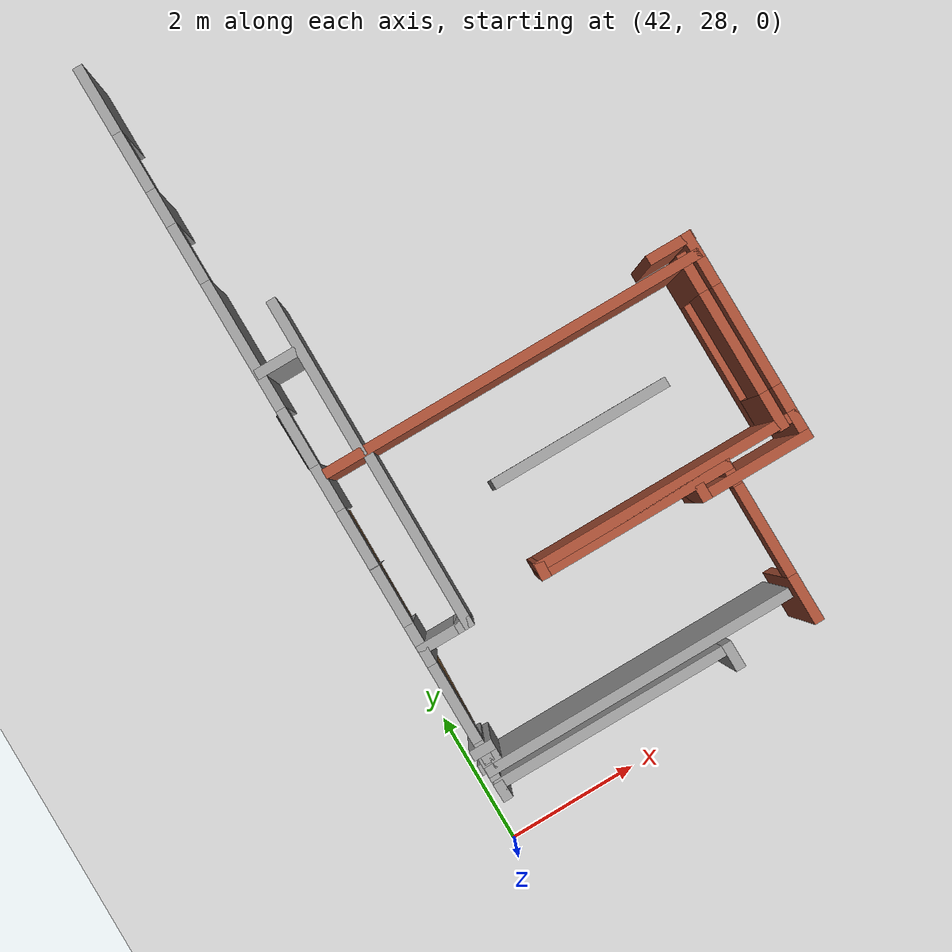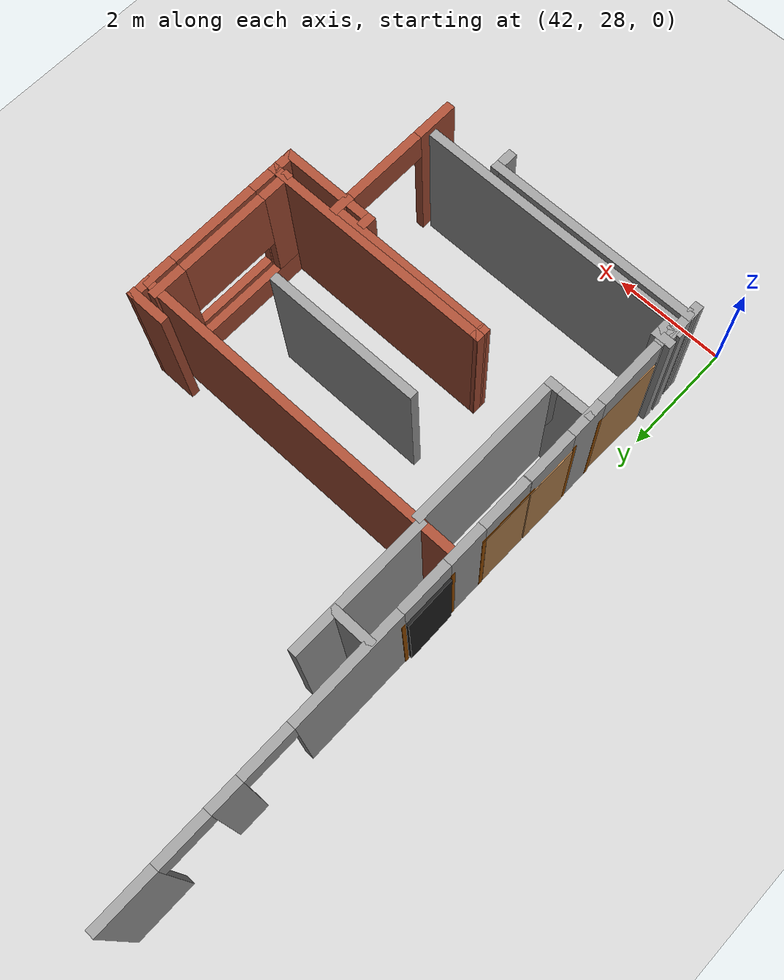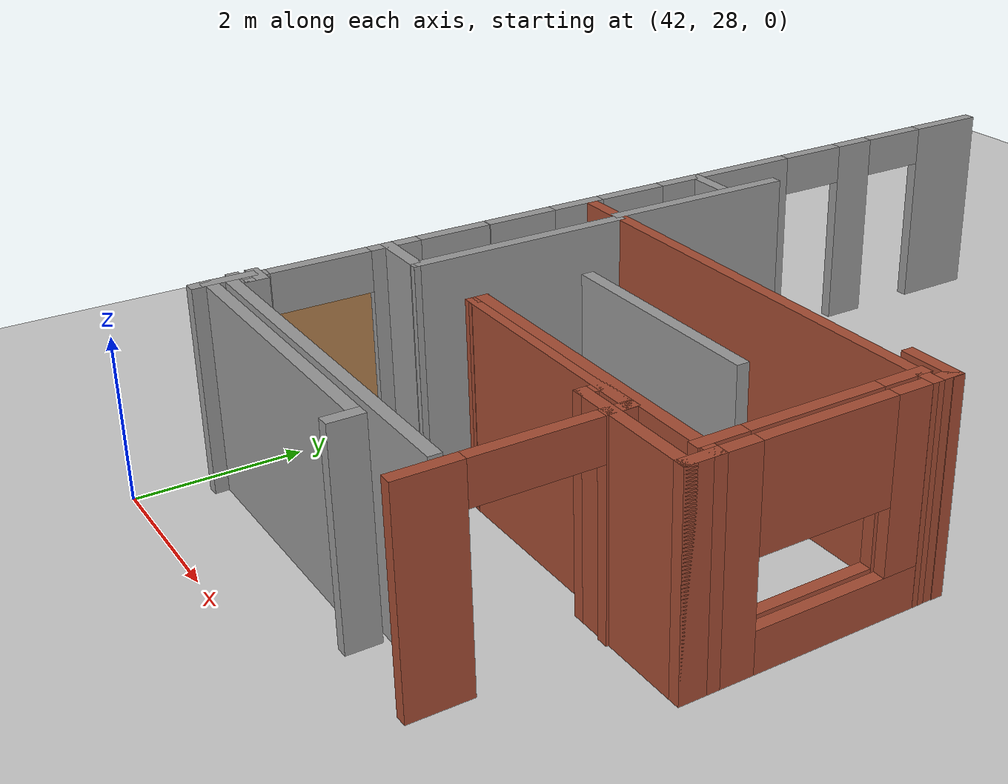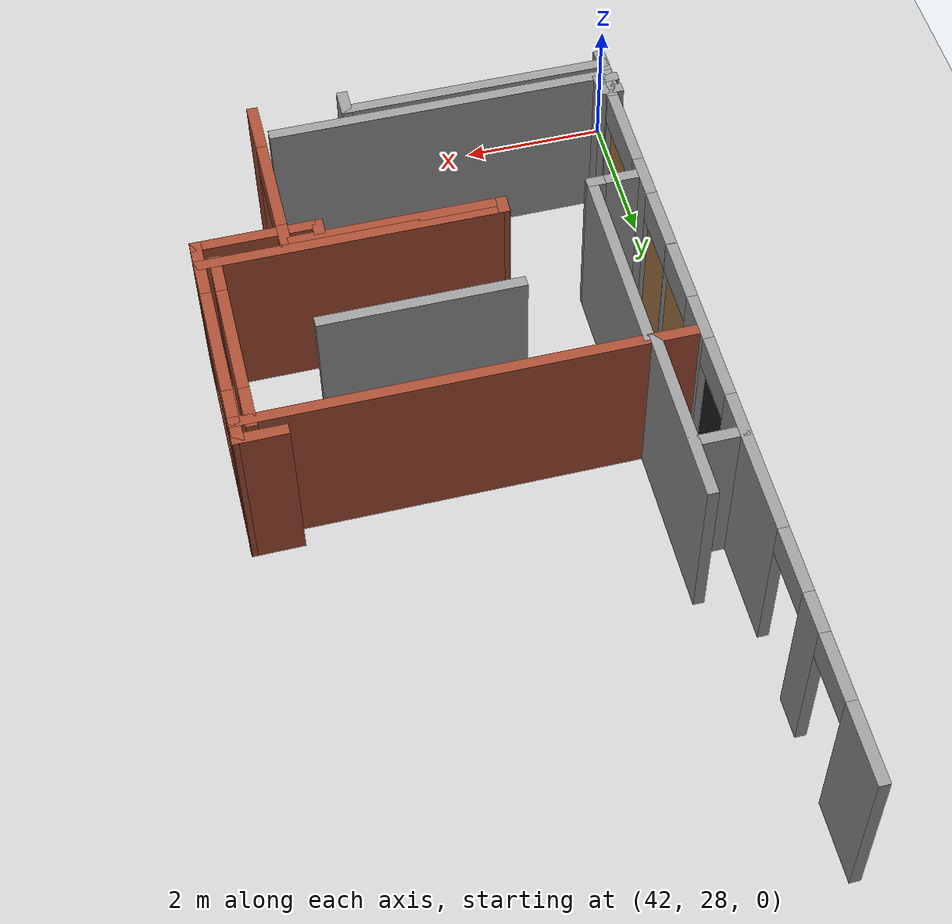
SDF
<sdf version="1.6">
 <world name="default">
  <model name="ground_plane">
   <static>1</static>
   <link name="link">
    <collision name="collision">
     <geometry><plane><normal>0 0 1</normal><size>100 100</size></plane></geometry>
     <surface><friction><ode><mu>100</mu><mu2>50</mu2></ode></friction></surface>
    </collision>
    <visual name="visual">
     <cast_shadows>0</cast_shadows>
     <geometry><plane><normal>0 0 1</normal><size>100 100</size></plane></geometry>
     <material>
      <script><uri>file://media/materials/scripts/gazebo.material</uri><name>Gazebo/Grey</name></script>
     </material>
    </visual>
   </link>
  </model>
  <model name="CVSSP">
   <pose>23.8714 24.094 0 0 -0 0</pose>
   <link name="Wall_137">
    <collision name="Wall_137_Collision">
     <geometry><box><size>0.344547 0.15 2.5</size></box></geometry>
     <pose>0 0 1.25 0 -0 0</pose>
    </collision>
    <visual name="Wall_137_Visual">
     <pose>0 0 1.25 0 -0 0</pose>
     <geometry><box><size>0.344547 0.15 2.5</size></box></geometry>
     <material>
      <script><uri>file://media/materials/scripts/gazebo.material</uri><name>Gazebo/Grey</name></script>
      <ambient>1 1 1 1</ambient>
     </material>
    </visual>
    <pose>18.4776 5.4664 0 0 -0 0</pose>
   </link>
   <link name="Wall_138">
    <collision name="Wall_138_Collision">
     <geometry><box><size>0.37481 0.15 2.5</size></box></geometry>
     <pose>0 0 1.25 0 -0 0</pose>
    </collision>
    <visual name="Wall_138_Visual">
     <pose>0 0 1.25 0 -0 0</pose>
     <geometry><box><size>0.37481 0.15 2.5</size></box></geometry>
     <material>
      <script><uri>file://media/materials/scripts/gazebo.material</uri><name>Gazebo/Grey</name></script>
      <ambient>1 1 1 1</ambient>
     </material>
    </visual>
    <pose>18.5749 5.354 0 0 0 -1.5708</pose>
   </link>
   <link name="Wall_139">
    <collision name="Wall_139_Collision">
     <geometry><box><size>0.344547 0.15 2.5</size></box></geometry>
     <pose>0 0 1.25 0 -0 0</pose>
    </collision>
    <visual name="Wall_139_Visual">
     <pose>0 0 1.25 0 -0 0</pose>
     <geometry><box><size>0.344547 0.15 2.5</size></box></geometry>
     <material>
      <script><uri>file://media/materials/scripts/gazebo.material</uri><name>Gazebo/Grey</name></script>
      <ambient>1 1 1 1</ambient>
     </material>
    </visual>
    <pose>18.4776 5.24159 0 0 -0 3.14159</pose>
   </link>
   <link name="Wall_142">
    <collision name="Wall_142_Collision">
     <geometry><box><size>4.79472 0.15 2.5</size></box></geometry>
     <pose>0 0 1.25 0 -0 0</pose>
    </collision>
    <visual name="Wall_142_Visual">
     <pose>0 0 1.25 0 -0 0</pose>
     <geometry><box><size>4.79472 0.15 2.5</size></box></geometry>
     <material>
      <script><uri>file://media/materials/scripts/gazebo.material</uri><name>Gazebo/Grey</name></script>
      <ambient>1 1 1 1</ambient>
     </material>
    </visual>
    <pose>20.7622 5.16977 0 0 0 -3.14127</pose>
   </link>
   <link name="Wall_145">
    <collision name="Wall_145_Collision">
     <geometry><box><size>3.74924 0.15 2.5</size></box></geometry>
     <pose>0 0 1.25 0 -0 0</pose>
    </collision>
    <visual name="Wall_145_Visual">
     <pose>0 0 1.25 0 -0 0</pose>
     <geometry><box><size>3.74924 0.15 2.5</size></box></geometry>
     <material>
      <script><uri>file://media/materials/scripts/gazebo.material</uri><name>Gazebo/Grey</name></script>
      <ambient>0.588235 0.588235 0.588235 1</ambient>
     </material>
    </visual>
    <pose>20.2524 4.95267 0 0 -0 0</pose>
   </link>
   <link name="Wall_146">
    <collision name="Wall_146_Collision">
     <geometry><box><size>0.407089 0.15 2.5</size></box></geometry>
     <pose>0 0 1.25 0 -0 0</pose>
    </collision>
    <visual name="Wall_146_Visual">
     <pose>0 0 1.25 0 -0 0</pose>
     <geometry><box><size>0.407089 0.15 2.5</size></box></geometry>
     <material>
      <script><uri>file://media/materials/scripts/gazebo.material</uri><name>Gazebo/Grey</name></script>
      <ambient>1 1 1 1</ambient>
     </material>
    </visual>
    <pose>22.0521 4.82421 0 0 0 -1.57054</pose>
   </link>
   <link name="Wall_200">
    <pose>23.2929 5.89364 0 0 -0 1.57095</pose>
    <visual name="Wall_200_Visual_0">
     <pose>-0.901323 0 1.25 0 -0 0</pose>
     <geometry><box><size>0.73684 0.15 2.5</size></box></geometry>
     <material>
      <script><uri>file://media/materials/scripts/gazebo.material</uri><name>Gazebo/Bricks</name></script>
      <ambient>0.588235 0.588235 0.588235 1</ambient>
     </material>
    </visual>
    <collision name="Wall_200_Collision_0">
     <geometry><box><size>0.73684 0.15 2.5</size></box></geometry>
     <pose>-0.901323 0 1.25 0 -0 0</pose>
    </collision>
    <visual name="Wall_200_Visual_1">
     <pose>1.08077 0 1.25 0 -0 0</pose>
     <geometry><box><size>0.377951 0.15 2.5</size></box></geometry>
     <material>
      <script><uri>file://media/materials/scripts/gazebo.material</uri><name>Gazebo/Bricks</name></script>
      <ambient>0.588235 0.588235 0.588235 1</ambient>
     </material>
    </visual>
    <collision name="Wall_200_Collision_1">
     <geometry><box><size>0.377951 0.15 2.5</size></box></geometry>
     <pose>1.08077 0 1.25 0 -0 0</pose>
    </collision>
    <visual name="Wall_200_Visual_2">
     <pose>0.179445 0 2.25 0 -0 0</pose>
     <geometry><box><size>1.4247 0.15 0.5</size></box></geometry>
     <material>
      <script><uri>file://media/materials/scripts/gazebo.material</uri><name>Gazebo/Bricks</name></script>
      <ambient>0.588235 0.588235 0.588235 1</ambient>
     </material>
    </visual>
    <collision name="Wall_200_Collision_2">
     <geometry><box><size>1.4247 0.15 0.5</size></box></geometry>
     <pose>0.179445 0 2.25 0 -0 0</pose>
    </collision>
   </link>
   <link name="Wall_201">
    <collision name="Wall_201_Collision">
     <geometry><box><size>3.01986 0.15 2.5</size></box></geometry>
     <pose>0 0 1.25 0 -0 0</pose>
    </collision>
    <visual name="Wall_201_Visual">
     <pose>0 0 1.25 0 -0 0</pose>
     <geometry><box><size>3.01986 0.15 2.5</size></box></geometry>
     <material>
      <script><uri>file://media/materials/scripts/gazebo.material</uri><name>Gazebo/Bricks</name></script>
      <ambient>1 1 1 1</ambient>
     </material>
    </visual>
    <pose>21.8512 7.08991 0 0 -0 3.14064</pose>
   </link>
   <link name="Wall_203">
    <collision name="Wall_203_Collision">
     <geometry><box><size>0.268535 0.15 2.5</size></box></geometry>
     <pose>0 0 1.25 0 -0 0</pose>
    </collision>
    <visual name="Wall_203_Visual">
     <pose>0 0 1.25 0 -0 0</pose>
     <geometry><box><size>0.268535 0.15 2.5</size></box></geometry>
     <material>
      <script><uri>file://media/materials/scripts/gazebo.material</uri><name>Gazebo/Bricks</name></script>
      <ambient>1 1 1 1</ambient>
     </material>
    </visual>
    <pose>20.4196 7.15046 0 0 -0 1.5153</pose>
   </link>
   <link name="Wall_204">
    <collision name="Wall_204_Collision">
     <geometry><box><size>4.16742 0.15 2.5</size></box></geometry>
     <pose>0 0 1.25 0 -0 0</pose>
    </collision>
    <visual name="Wall_204_Visual">
     <pose>0 0 1.25 0 -0 0</pose>
     <geometry><box><size>4.16742 0.15 2.5</size></box></geometry>
     <material>
      <script><uri>file://media/materials/scripts/gazebo.material</uri><name>Gazebo/Bricks</name></script>
      <ambient>1 1 1 1</ambient>
     </material>
    </visual>
    <pose>22.425 7.20963 0 0 -0 0</pose>
   </link>
   <link name="Wall_206">
    <collision name="Wall_206_Collision">
     <geometry><box><size>0.472183 0.15 2.5</size></box></geometry>
     <pose>0 0 1.25 0 -0 0</pose>
    </collision>
    <visual name="Wall_206_Visual">
     <pose>0 0 1.25 0 -0 0</pose>
     <geometry><box><size>0.472183 0.15 2.5</size></box></geometry>
     <material>
      <script><uri>file://media/materials/scripts/gazebo.material</uri><name>Gazebo/Bricks</name></script>
      <ambient>1 1 1 1</ambient>
     </material>
    </visual>
    <pose>24.4337 7.04854 0 0 0 -1.5708</pose>
   </link>
   <link name="Wall_207">
    <collision name="Wall_207_Collision">
     <geometry><box><size>1.75 0.15 2.5</size></box></geometry>
     <pose>0 0 1.25 0 -0 0</pose>
    </collision>
    <visual name="Wall_207_Visual">
     <pose>0 0 1.25 0 -0 0</pose>
     <geometry><box><size>1.75 0.15 2.5</size></box></geometry>
     <material>
      <script><uri>file://media/materials/scripts/gazebo.material</uri><name>Gazebo/Bricks</name></script>
      <ambient>1 1 1 1</ambient>
     </material>
    </visual>
    <pose>23.6337 6.88745 0 0 -0 3.14159</pose>
   </link>
   <link name="Wall_208">
    <collision name="Wall_208_Collision">
     <geometry><box><size>0.25 0.15 2.5</size></box></geometry>
     <pose>0 0 1.25 0 -0 0</pose>
    </collision>
    <visual name="Wall_208_Visual">
     <pose>0 0 1.25 0 -0 0</pose>
     <geometry><box><size>0.25 0.15 2.5</size></box></geometry>
     <material>
      <script><uri>file://media/materials/scripts/gazebo.material</uri><name>Gazebo/Bricks</name></script>
      <ambient>1 1 1 1</ambient>
     </material>
    </visual>
    <pose>22.8337 6.93745 0 0 -0 1.5708</pose>
   </link>
   <link name="Wall_213">
    <pose>24.4337 8.48333 0 0 -0 1.5708</pose>
    <visual name="Wall_213_Visual_0">
     <pose>-1.07539 0 1.25 0 -0 0</pose>
     <geometry><box><size>0.546615 0.15 2.5</size></box></geometry>
     <material>
      <script><uri>file://media/materials/scripts/gazebo.material</uri><name>Gazebo/Bricks</name></script>
      <ambient>1 1 1 1</ambient>
     </material>
    </visual>
    <collision name="Wall_213_Collision_0">
     <geometry><box><size>0.546615 0.15 2.5</size></box></geometry>
     <pose>-1.07539 0 1.25 0 -0 0</pose>
    </collision>
    <visual name="Wall_213_Visual_1">
     <pose>0.273308 0 0.25 0 -0 0</pose>
     <geometry><box><size>2.15078 0.15 0.5</size></box></geometry>
     <material>
      <script><uri>file://media/materials/scripts/gazebo.material</uri><name>Gazebo/Bricks</name></script>
      <ambient>1 1 1 1</ambient>
     </material>
    </visual>
    <collision name="Wall_213_Collision_1">
     <geometry><box><size>2.15078 0.15 0.5</size></box></geometry>
     <pose>0.273308 0 0.25 0 -0 0</pose>
    </collision>
    <visual name="Wall_213_Visual_2">
     <pose>1.06771 0 1.5 0 -0 0</pose>
     <geometry><box><size>0.561981 0.15 2</size></box></geometry>
     <material>
      <script><uri>file://media/materials/scripts/gazebo.material</uri><name>Gazebo/Bricks</name></script>
      <ambient>1 1 1 1</ambient>
     </material>
    </visual>
    <collision name="Wall_213_Collision_2">
     <geometry><box><size>0.561981 0.15 2</size></box></geometry>
     <pose>1.06771 0 1.5 0 -0 0</pose>
    </collision>
    <visual name="Wall_213_Visual_3">
     <pose>-0.007683 0 1.9 0 -0 0</pose>
     <geometry><box><size>1.5888 0.15 1.2</size></box></geometry>
     <material>
      <script><uri>file://media/materials/scripts/gazebo.material</uri><name>Gazebo/Bricks</name></script>
      <ambient>1 1 1 1</ambient>
     </material>
    </visual>
    <collision name="Wall_213_Collision_3">
     <geometry><box><size>1.5888 0.15 1.2</size></box></geometry>
     <pose>-0.007683 0 1.9 0 -0 0</pose>
    </collision>
   </link>
   <link name="Wall_214">
    <collision name="Wall_214_Collision">
     <geometry><box><size>5.97381 0.15 2.5</size></box></geometry>
     <pose>0 0 1.25 0 -0 0</pose>
    </collision>
    <visual name="Wall_214_Visual">
     <pose>0 0 1.25 0 -0 0</pose>
     <geometry><box><size>5.97381 0.15 2.5</size></box></geometry>
     <material>
      <script><uri>file://media/materials/scripts/gazebo.material</uri><name>Gazebo/Bricks</name></script>
      <ambient>0.588235 0.588235 0.588235 1</ambient>
     </material>
    </visual>
    <pose>21.5218 9.76806 0 0 -0 3.14006</pose>
   </link>
   <link name="Wall_220">
    <pose>24.2299 8.49507 0 0 0 -1.5708</pose>
    <visual name="Wall_220_Visual_0">
     <pose>-1.08519 0 1.25 0 -0 0</pose>
     <geometry><box><size>0.603103 0.15 2.5</size></box></geometry>
     <material>
      <script><uri>file://media/materials/scripts/gazebo.material</uri><name>Gazebo/Bricks</name></script>
      <ambient>1 1 1 1</ambient>
     </material>
    </visual>
    <collision name="Wall_220_Collision_0">
     <geometry><box><size>0.603103 0.15 2.5</size></box></geometry>
     <pose>-1.08519 0 1.25 0 -0 0</pose>
    </collision>
    <visual name="Wall_220_Visual_1">
     <pose>0.301552 0 0.25 0 -0 0</pose>
     <geometry><box><size>2.17039 0.15 0.5</size></box></geometry>
     <material>
      <script><uri>file://media/materials/scripts/gazebo.material</uri><name>Gazebo/Bricks</name></script>
      <ambient>1 1 1 1</ambient>
     </material>
    </visual>
    <collision name="Wall_220_Collision_1">
     <geometry><box><size>2.17039 0.15 0.5</size></box></geometry>
     <pose>0.301552 0 0.25 0 -0 0</pose>
    </collision>
    <visual name="Wall_220_Visual_2">
     <pose>1.09595 0 1.5 0 -0 0</pose>
     <geometry><box><size>0.581584 0.15 2</size></box></geometry>
     <material>
      <script><uri>file://media/materials/scripts/gazebo.material</uri><name>Gazebo/Bricks</name></script>
      <ambient>1 1 1 1</ambient>
     </material>
    </visual>
    <collision name="Wall_220_Collision_2">
     <geometry><box><size>0.581584 0.15 2</size></box></geometry>
     <pose>1.09595 0 1.5 0 -0 0</pose>
    </collision>
    <visual name="Wall_220_Visual_3">
     <pose>0.010759 0 1.9 0 -0 0</pose>
     <geometry><box><size>1.5888 0.15 1.2</size></box></geometry>
     <material>
      <script><uri>file://media/materials/scripts/gazebo.material</uri><name>Gazebo/Bricks</name></script>
      <ambient>1 1 1 1</ambient>
     </material>
    </visual>
    <collision name="Wall_220_Collision_3">
     <geometry><box><size>1.5888 0.15 1.2</size></box></geometry>
     <pose>0.010759 0 1.9 0 -0 0</pose>
    </collision>
   </link>
   <link name="Wall_222">
    <collision name="Wall_222_Collision">
     <geometry><box><size>0.75 0.15 2.5</size></box></geometry>
     <pose>0 0 1.25 0 -0 0</pose>
    </collision>
    <visual name="Wall_222_Visual">
     <pose>0 0 1.25 0 -0 0</pose>
     <geometry><box><size>0.75 0.15 2.5</size></box></geometry>
     <material>
      <script><uri>file://media/materials/scripts/gazebo.material</uri><name>Gazebo/Grey</name></script>
      <ambient>0.588235 0.588235 0.588235 1</ambient>
     </material>
    </visual>
    <pose>18.778 7.05344 0 0 -0 0</pose>
   </link>
   <link name="Wall_223">
    <collision name="Wall_223_Collision">
     <geometry><box><size>0.25 0.15 2.5</size></box></geometry>
     <pose>0 0 1.25 0 -0 0</pose>
    </collision>
    <visual name="Wall_223_Visual">
     <pose>0 0 1.25 0 -0 0</pose>
     <geometry><box><size>0.25 0.15 2.5</size></box></geometry>
     <material>
      <script><uri>file://media/materials/scripts/gazebo.material</uri><name>Gazebo/Grey</name></script>
      <ambient>1 1 1 1</ambient>
     </material>
    </visual>
    <pose>19.128 7.05344 0 0 -0 0</pose>
   </link>
   <link name="Wall_224">
    <collision name="Wall_224_Collision">
     <geometry><box><size>2.81007 0.15 2.5</size></box></geometry>
     <pose>0 0 1.25 0 -0 0</pose>
    </collision>
    <visual name="Wall_224_Visual">
     <pose>0 0 1.25 0 -0 0</pose>
     <geometry><box><size>2.81007 0.15 2.5</size></box></geometry>
     <material>
      <script><uri>file://media/materials/scripts/gazebo.material</uri><name>Gazebo/Grey</name></script>
      <ambient>0.588235 0.588235 0.588235 1</ambient>
     </material>
    </visual>
    <pose>19.1823 8.38344 0 0 -0 1.56755</pose>
   </link>
   <link name="Wall_235">
    <collision name="Wall_235_Collision">
     <geometry><box><size>2.48045 0.15 2.5</size></box></geometry>
     <pose>0 0 1.25 0 -0 0</pose>
    </collision>
    <visual name="Wall_235_Visual">
     <pose>0 0 1.25 0 -0 0</pose>
     <geometry><box><size>2.48045 0.15 2.5</size></box></geometry>
     <material>
      <script><uri>file://media/materials/scripts/gazebo.material</uri><name>Gazebo/Grey</name></script>
      <ambient>1 1 1 1</ambient>
     </material>
    </visual>
    <pose>19.1127 10.9507 0 0 0 -1.57453</pose>
   </link>
   <link name="Wall_237">
    <collision name="Wall_237_Collision">
     <geometry><box><size>0.75 0.15 2.5</size></box></geometry>
     <pose>0 0 1.25 0 -0 0</pose>
    </collision>
    <visual name="Wall_237_Visual">
     <pose>0 0 1.25 0 -0 0</pose>
     <geometry><box><size>0.75 0.15 2.5</size></box></geometry>
     <material>
      <script><uri>file://media/materials/scripts/gazebo.material</uri><name>Gazebo/Grey</name></script>
      <ambient>1 1 1 1</ambient>
     </material>
    </visual>
    <pose>18.798 11.4046 0 0 -0 0</pose>
   </link>
   <link name="Wall_239">
    <collision name="Wall_239_Collision">
     <geometry><box><size>0.410984 0.15 2.5</size></box></geometry>
     <pose>0 0 1.25 0 -0 0</pose>
    </collision>
    <visual name="Wall_239_Visual">
     <pose>0 0 1.25 0 -0 0</pose>
     <geometry><box><size>0.410984 0.15 2.5</size></box></geometry>
     <material>
      <script><uri>file://media/materials/scripts/gazebo.material</uri><name>Gazebo/Bricks</name></script>
      <ambient>1 1 1 1</ambient>
     </material>
    </visual>
    <pose>24.4308 9.89408 0 0 -0 1.593</pose>
   </link>
   <link name="Wall_240">
    <collision name="Wall_240_Collision">
     <geometry><box><size>0.714004 0.15 2.5</size></box></geometry>
     <pose>0 0 1.25 0 -0 0</pose>
    </collision>
    <visual name="Wall_240_Visual">
     <pose>0 0 1.25 0 -0 0</pose>
     <geometry><box><size>0.714004 0.15 2.5</size></box></geometry>
     <material>
      <script><uri>file://media/materials/scripts/gazebo.material</uri><name>Gazebo/Bricks</name></script>
      <ambient>1 1 1 1</ambient>
     </material>
    </visual>
    <pose>24.156 10.0241 0 0 0 -3.1399</pose>
   </link>
   <link name="Wall_594">
    <collision name="Wall_594_Collision">
     <geometry><box><size>2.75 0.15 2.5</size></box></geometry>
     <pose>0 0 1.25 0 -0 0</pose>
    </collision>
    <visual name="Wall_594_Visual">
     <pose>0 0 1.25 0 -0 0</pose>
     <geometry><box><size>2.75 0.15 2.5</size></box></geometry>
     <material>
      <script><uri>file://media/materials/scripts/gazebo.material</uri><name>Gazebo/Grey</name></script>
      <ambient>0.588235 0.588235 0.588235 1</ambient>
     </material>
    </visual>
    <pose>21.8103 8.48184 0 0 -0 0</pose>
   </link>
   <link name="Wall_78">
    <pose>18.474 10.7662 0 0 0 -1.57021</pose>
    <visual name="Wall_78_Visual_0">
     <pose>-4.96653 0 1.25 0 -0 0</pose>
     <geometry><box><size>1.05938 0.15 2.5</size></box></geometry>
     <material>
      <script><uri>file://media/materials/scripts/gazebo.material</uri><name>Gazebo/Grey</name></script>
      <ambient>1 1 1 1</ambient>
     </material>
    </visual>
    <collision name="Wall_78_Collision_0">
     <geometry><box><size>1.05938 0.15 2.5</size></box></geometry>
     <pose>-4.96653 0 1.25 0 -0 0</pose>
    </collision>
    <visual name="Wall_78_Visual_1">
     <pose>-3.25946 0 1.25 0 -0 0</pose>
     <geometry><box><size>0.554758 0.15 2.5</size></box></geometry>
     <material>
      <script><uri>file://media/materials/scripts/gazebo.material</uri><name>Gazebo/Grey</name></script>
      <ambient>1 1 1 1</ambient>
     </material>
    </visual>
    <collision name="Wall_78_Collision_1">
     <geometry><box><size>0.554758 0.15 2.5</size></box></geometry>
     <pose>-3.25946 0 1.25 0 -0 0</pose>
    </collision>
    <visual name="Wall_78_Visual_2">
     <pose>-1.07517 0 1.25 0 -0 0</pose>
     <geometry><box><size>2.01383 0.15 2.5</size></box></geometry>
     <material>
      <script><uri>file://media/materials/scripts/gazebo.material</uri><name>Gazebo/Grey</name></script>
      <ambient>1 1 1 1</ambient>
     </material>
    </visual>
    <collision name="Wall_78_Collision_2">
     <geometry><box><size>2.01383 0.15 2.5</size></box></geometry>
     <pose>-1.07517 0 1.25 0 -0 0</pose>
    </collision>
    <visual name="Wall_78_Visual_3">
     <pose>1.17751 0 1.25 0 -0 0</pose>
     <geometry><box><size>0.691523 0.15 2.5</size></box></geometry>
     <material>
      <script><uri>file://media/materials/scripts/gazebo.material</uri><name>Gazebo/Grey</name></script>
      <ambient>1 1 1 1</ambient>
     </material>
    </visual>
    <collision name="Wall_78_Collision_3">
     <geometry><box><size>0.691523 0.15 2.5</size></box></geometry>
     <pose>1.17751 0 1.25 0 -0 0</pose>
    </collision>
    <visual name="Wall_78_Visual_4">
     <pose>2.42807 0 1.25 0 -0 0</pose>
     <geometry><box><size>0.009597 0.15 2.5</size></box></geometry>
     <material>
      <script><uri>file://media/materials/scripts/gazebo.material</uri><name>Gazebo/Grey</name></script>
      <ambient>1 1 1 1</ambient>
     </material>
    </visual>
    <collision name="Wall_78_Collision_4">
     <geometry><box><size>0.009597 0.15 2.5</size></box></geometry>
     <pose>2.42807 0 1.25 0 -0 0</pose>
    </collision>
    <visual name="Wall_78_Visual_5">
     <pose>3.64808 0 1.25 0 -0 0</pose>
     <geometry><box><size>0.630422 0.15 2.5</size></box></geometry>
     <material>
      <script><uri>file://media/materials/scripts/gazebo.material</uri><name>Gazebo/Grey</name></script>
      <ambient>1 1 1 1</ambient>
     </material>
    </visual>
    <collision name="Wall_78_Collision_5">
     <geometry><box><size>0.630422 0.15 2.5</size></box></geometry>
     <pose>3.64808 0 1.25 0 -0 0</pose>
    </collision>
    <visual name="Wall_78_Visual_6">
     <pose>5.33714 0 1.25 0 -0 0</pose>
     <geometry><box><size>0.318161 0.15 2.5</size></box></geometry>
     <material>
      <script><uri>file://media/materials/scripts/gazebo.material</uri><name>Gazebo/Grey</name></script>
      <ambient>1 1 1 1</ambient>
     </material>
    </visual>
    <collision name="Wall_78_Collision_6">
     <geometry><box><size>0.318161 0.15 2.5</size></box></geometry>
     <pose>5.33714 0 1.25 0 -0 0</pose>
    </collision>
    <visual name="Wall_78_Visual_7">
     <pose>-3.98684 0 2.25 0 -0 0</pose>
     <geometry><box><size>0.9 0.15 0.5</size></box></geometry>
     <material>
      <script><uri>file://media/materials/scripts/gazebo.material</uri><name>Gazebo/Grey</name></script>
      <ambient>1 1 1 1</ambient>
     </material>
    </visual>
    <collision name="Wall_78_Collision_7">
     <geometry><box><size>0.9 0.15 0.5</size></box></geometry>
     <pose>-3.98684 0 2.25 0 -0 0</pose>
    </collision>
    <visual name="Wall_78_Visual_8">
     <pose>-2.53208 0 2.25 0 -0 0</pose>
     <geometry><box><size>0.9 0.15 0.5</size></box></geometry>
     <material>
      <script><uri>file://media/materials/scripts/gazebo.material</uri><name>Gazebo/Grey</name></script>
      <ambient>1 1 1 1</ambient>
     </material>
    </visual>
    <collision name="Wall_78_Collision_8">
     <geometry><box><size>0.9 0.15 0.5</size></box></geometry>
     <pose>-2.53208 0 2.25 0 -0 0</pose>
    </collision>
    <visual name="Wall_78_Visual_9">
     <pose>0.381748 0 2.25 0 -0 0</pose>
     <geometry><box><size>0.9 0.15 0.5</size></box></geometry>
     <material>
      <script><uri>file://media/materials/scripts/gazebo.material</uri><name>Gazebo/Grey</name></script>
      <ambient>1 1 1 1</ambient>
     </material>
    </visual>
    <collision name="Wall_78_Collision_9">
     <geometry><box><size>0.9 0.15 0.5</size></box></geometry>
     <pose>0.381748 0 2.25 0 -0 0</pose>
    </collision>
    <visual name="Wall_78_Visual_10">
     <pose>1.97327 0 2.25 0 -0 0</pose>
     <geometry><box><size>0.9 0.15 0.5</size></box></geometry>
     <material>
      <script><uri>file://media/materials/scripts/gazebo.material</uri><name>Gazebo/Grey</name></script>
      <ambient>1 1 1 1</ambient>
     </material>
    </visual>
    <collision name="Wall_78_Collision_10">
     <geometry><box><size>0.9 0.15 0.5</size></box></geometry>
     <pose>1.97327 0 2.25 0 -0 0</pose>
    </collision>
    <visual name="Wall_78_Visual_11">
     <pose>2.88287 0 2.25 0 -0 0</pose>
     <geometry><box><size>0.9 0.15 0.5</size></box></geometry>
     <material>
      <script><uri>file://media/materials/scripts/gazebo.material</uri><name>Gazebo/Grey</name></script>
      <ambient>1 1 1 1</ambient>
     </material>
    </visual>
    <collision name="Wall_78_Collision_11">
     <geometry><box><size>0.9 0.15 0.5</size></box></geometry>
     <pose>2.88287 0 2.25 0 -0 0</pose>
    </collision>
    <visual name="Wall_78_Visual_12">
     <pose>4.57067 0 2.25 0 -0 0</pose>
     <geometry><box><size>1.21477 0.15 0.5</size></box></geometry>
     <material>
      <script><uri>file://media/materials/scripts/gazebo.material</uri><name>Gazebo/Grey</name></script>
      <ambient>1 1 1 1</ambient>
     </material>
    </visual>
    <collision name="Wall_78_Collision_12">
     <geometry><box><size>1.21477 0.15 0.5</size></box></geometry>
     <pose>4.57067 0 2.25 0 -0 0</pose>
    </collision>
   </link>
   <link name="Wall_79">
    <collision name="Wall_79_Collision">
     <geometry><box><size>0.15 0.15 2.5</size></box></geometry>
     <pose>0 0 1.25 0 -0 0</pose>
    </collision>
    <visual name="Wall_79_Visual">
     <pose>0 0 1.25 0 -0 0</pose>
     <geometry><box><size>0.15 0.15 2.5</size></box></geometry>
     <material>
      <script><uri>file://media/materials/scripts/gazebo.material</uri><name>Gazebo/Grey</name></script>
      <ambient>1 1 1 1</ambient>
     </material>
    </visual>
    <pose>18.4772 5.34496 0 0 -0 0</pose>
   </link>
   <link name="Wall_80">
    <collision name="Wall_80_Collision">
     <geometry><box><size>0.15 0.15 2.5</size></box></geometry>
     <pose>0 0 1.25 0 -0 0</pose>
    </collision>
    <visual name="Wall_80_Visual">
     <pose>0 0 1.25 0 -0 0</pose>
     <geometry><box><size>0.15 0.15 2.5</size></box></geometry>
     <material>
      <script><uri>file://media/materials/scripts/gazebo.material</uri><name>Gazebo/Grey</name></script>
      <ambient>1 1 1 1</ambient>
     </material>
    </visual>
    <pose>18.4772 5.34496 0 0 -0 0</pose>
   </link>
   <link name="Wall_82">
    <collision name="Wall_82_Collision">
     <geometry><box><size>0.279389 0.15 2.5</size></box></geometry>
     <pose>0 0 1.25 0 -0 0</pose>
    </collision>
    <visual name="Wall_82_Visual">
     <pose>0 0 1.25 0 -0 0</pose>
     <geometry><box><size>0.279389 0.15 2.5</size></box></geometry>
     <material>
      <script><uri>file://media/materials/scripts/gazebo.material</uri><name>Gazebo/Grey</name></script>
      <ambient>1 1 1 1</ambient>
     </material>
    </visual>
    <pose>18.435 4.85136 0 0 -0 1.60628</pose>
   </link>
   <link name="Wall_83">
    <collision name="Wall_83_Collision">
     <geometry><box><size>0.633672 0.15 2.5</size></box></geometry>
     <pose>0 0 1.25 0 -0 0</pose>
    </collision>
    <visual name="Wall_83_Visual">
     <pose>0 0 1.25 0 -0 0</pose>
     <geometry><box><size>0.633672 0.15 2.5</size></box></geometry>
     <material>
      <script><uri>file://media/materials/scripts/gazebo.material</uri><name>Gazebo/Grey</name></script>
      <ambient>1 1 1 1</ambient>
     </material>
    </visual>
    <pose>18.4338 5.15785 0 0 -0 1.56641</pose>
   </link>
   <static>1</static>
  </model>
  <model name="metal_door">
   <link name="link">
    <inertial>
     <mass>1</mass>
     <inertia>
      <ixx>0.166667</ixx>
      <ixy>0</ixy>
      <ixz>0</ixz>
      <iyy>0.166667</iyy>
      <iyz>0</iyz>
      <izz>0.166667</izz>
     </inertia>
    </inertial>
    <gravity>0</gravity>
    <visual name="visual">
     <geometry><box><size>0.100297 0.870347 1.94787</size></box></geometry>
     <material>
      <script><name>Gazebo/Black</name><uri>file://media/materials/scripts/gazebo.material</uri></script>
      <shader type="pixel"><normal_map>__default__</normal_map></shader>
      <ambient>0.01 0.001 0.001 1</ambient>
      <diffuse>0.7 0.7 0.7 1</diffuse>
      <specular>0.01 0.01 0.01 1</specular>
      <emissive>0 0 0 1</emissive>
     </material>
    </visual>
    <collision name="collision">
     <geometry><box><size>0.100297 0.870347 1.94787</size></box></geometry>
     <surface>
      <friction>
       <ode><mu>1</mu><mu2>1</mu2><fdir1>0 0 0</fdir1><slip1>0</slip1><slip2>0</slip2></ode>
       <torsional>
        <coefficient>1</coefficient>
        <patch_radius>0</patch_radius>
        <surface_radius>0</surface_radius>
        <use_patch_radius>1</use_patch_radius>
        <ode><slip>0</slip></ode>
       </torsional>
      </friction>
      <bounce><restitution_coefficient>0</restitution_coefficient><threshold>1e+06</threshold></bounce>
      <contact>
       <collide_without_contact>0</collide_without_contact>
       <collide_without_contact_bitmask>1</collide_without_contact_bitmask>
       <collide_bitmask>1</collide_bitmask>
       <ode>
        <soft_cfm>0</soft_cfm>
        <soft_erp>0.2</soft_erp>
        <kp>1e+13</kp>
        <kd>1</kd>
        <max_vel>0.01</max_vel>
        <min_depth>0</min_depth>
       </ode>
       <bullet>
        <split_impulse>1</split_impulse>
        <split_impulse_penetration_threshold>-0.01</split_impulse_penetration_threshold>
        <soft_cfm>0</soft_cfm>
        <soft_erp>0.2</soft_erp>
        <kp>1e+13</kp>
        <kd>1</kd>
       </bullet>
      </contact>
     </surface>
    </collision>
   </link>
   <static>1</static>
   <pose>42.2821 34.4796 1.00438 -0.004669 -0.001302 0.01235</pose>
  </model>
  <model name="basic_ply_door_corrected_clone_0_clone_clone_2">
   <link name="link">
    <pose>-0 0 1.00385 0 -0 0</pose>
    <inertial>
     <mass>0.5167</mass>
     <inertia>
      <ixx>0.00086117</ixx>
      <ixy>0</ixy>
      <ixz>0</ixz>
      <iyy>0.00086117</iyy>
      <iyz>0</iyz>
      <izz>0.00086117</izz>
     </inertia>
    </inertial>
    <gravity>0</gravity>
    <visual name="visual">
     <geometry><box><size>0.88 0.1 1.96</size></box></geometry>
     <material>
      <script><uri>file://media/materials/scripts/gazebo.material</uri><name>Gazebo/Wood</name></script>
      <shader type="pixel"><normal_map>__default__</normal_map></shader>
      <ambient>1 1 1 1</ambient>
      <diffuse>1 1 1 1</diffuse>
      <specular>0.2 0.2 0.2 1</specular>
      <emissive>0 0 0 1</emissive>
     </material>
    </visual>
    <collision name="collision">
     <geometry><box><size>0.88 0.1 1.96</size></box></geometry>
     <surface>
      <friction>
       <ode><mu>1</mu><mu2>1</mu2><fdir1>0 0 0</fdir1><slip1>0</slip1><slip2>0</slip2></ode>
       <torsional>
        <coefficient>1</coefficient>
        <patch_radius>0</patch_radius>
        <surface_radius>0.01</surface_radius>
        <use_patch_radius>0</use_patch_radius>
        <ode><slip>0</slip></ode>
       </torsional>
      </friction>
      <bounce><restitution_coefficient>0</restitution_coefficient><threshold>1e+06</threshold></bounce>
      <contact>
       <collide_without_contact>0</collide_without_contact>
       <collide_without_contact_bitmask>1</collide_without_contact_bitmask>
       <collide_bitmask>1</collide_bitmask>
       <ode>
        <soft_cfm>0</soft_cfm>
        <soft_erp>0.2</soft_erp>
        <kp>100000</kp>
        <kd>100</kd>
        <max_vel>100</max_vel>
        <min_depth>0.001</min_depth>
       </ode>
       <bullet>
        <split_impulse>1</split_impulse>
        <split_impulse_penetration_threshold>-0.01</split_impulse_penetration_threshold>
        <soft_cfm>0</soft_cfm>
        <soft_erp>0.2</soft_erp>
        <kp>100000</kp>
        <kd>100</kd>
       </bullet>
      </contact>
     </surface>
    </collision>
   </link>
   <static>1</static>
   <pose>42.3174 32.8788 -0.00101 0 -0 1.56379</pose>
  </model>
  <model name="basic_ply_door_corrected_clone_0_clone_clone_3">
   <link name="link">
    <pose>-0 0 1.00385 0 -0 0</pose>
    <inertial>
     <mass>0.5167</mass>
     <inertia>
      <ixx>0.00086117</ixx>
      <ixy>0</ixy>
      <ixz>0</ixz>
      <iyy>0.00086117</iyy>
      <iyz>0</iyz>
      <izz>0.00086117</izz>
     </inertia>
    </inertial>
    <gravity>0</gravity>
    <visual name="visual">
     <geometry><box><size>0.88 0.1 1.96</size></box></geometry>
     <material>
      <script><uri>file://media/materials/scripts/gazebo.material</uri><name>Gazebo/Wood</name></script>
      <shader type="pixel"><normal_map>__default__</normal_map></shader>
      <ambient>1 1 1 1</ambient>
      <diffuse>1 1 1 1</diffuse>
      <specular>0.2 0.2 0.2 1</specular>
      <emissive>0 0 0 1</emissive>
     </material>
    </visual>
    <collision name="collision">
     <geometry><box><size>0.88 0.1 1.96</size></box></geometry>
     <surface>
      <friction>
       <ode><mu>1</mu><mu2>1</mu2><fdir1>0 0 0</fdir1><slip1>0</slip1><slip2>0</slip2></ode>
       <torsional>
        <coefficient>1</coefficient>
        <patch_radius>0</patch_radius>
        <surface_radius>0.01</surface_radius>
        <use_patch_radius>0</use_patch_radius>
        <ode><slip>0</slip></ode>
       </torsional>
      </friction>
      <bounce><restitution_coefficient>0</restitution_coefficient><threshold>1e+06</threshold></bounce>
      <contact>
       <collide_without_contact>0</collide_without_contact>
       <collide_without_contact_bitmask>1</collide_without_contact_bitmask>
       <collide_bitmask>1</collide_bitmask>
       <ode>
        <soft_cfm>0</soft_cfm>
        <soft_erp>0.2</soft_erp>
        <kp>100000</kp>
        <kd>100</kd>
        <max_vel>100</max_vel>
        <min_depth>0.001</min_depth>
       </ode>
       <bullet>
        <split_impulse>1</split_impulse>
        <split_impulse_penetration_threshold>-0.01</split_impulse_penetration_threshold>
        <soft_cfm>0</soft_cfm>
        <soft_erp>0.2</soft_erp>
        <kp>100000</kp>
        <kd>100</kd>
       </bullet>
      </contact>
     </surface>
    </collision>
   </link>
   <static>1</static>
   <pose>42.3101 31.9698 -0.00101 0 -0 1.56379</pose>
  </model>
  <model name="oak_frame_0_clone_clone_3">
   <link name="link">
    <inertial>
     <mass>1</mass>
     <inertia>
      <ixx>0.166667</ixx>
      <ixy>0</ixy>
      <ixz>0</ixz>
      <iyy>0.166667</iyy>
      <iyz>0</iyz>
      <izz>0.166667</izz>
     </inertia>
    </inertial>
    <visual name="visual">
     <geometry><box><size>0.018685 0.076446 2.026</size></box></geometry>
     <material>
      <script><name>Gazebo/Grey</name><uri>file://media/materials/scripts/gazebo.material</uri></script>
      <shader type="pixel"><normal_map>__default__</normal_map></shader>
      <diffuse>0.58 0.29 0 0</diffuse>
      <ambient>0.58 0.29 0 1</ambient>
      <specular>0.01 0.01 0.01 1</specular>
      <emissive>0 0 0 1</emissive>
     </material>
    </visual>
    <collision name="collision">
     <geometry><box><size>0.018685 0.076446 2.026</size></box></geometry>
     <surface>
      <friction>
       <ode><mu>1</mu><mu2>1</mu2><fdir1>0 0 0</fdir1><slip1>0</slip1><slip2>0</slip2></ode>
       <torsional>
        <coefficient>1</coefficient>
        <patch_radius>0</patch_radius>
        <surface_radius>0</surface_radius>
        <use_patch_radius>1</use_patch_radius>
        <ode><slip>0</slip></ode>
       </torsional>
      </friction>
      <bounce><restitution_coefficient>0</restitution_coefficient><threshold>1e+06</threshold></bounce>
      <contact>
       <collide_without_contact>0</collide_without_contact>
       <collide_without_contact_bitmask>1</collide_without_contact_bitmask>
       <collide_bitmask>1</collide_bitmask>
       <ode>
        <soft_cfm>0</soft_cfm>
        <soft_erp>0.2</soft_erp>
        <kp>1e+13</kp>
        <kd>1</kd>
        <max_vel>0.01</max_vel>
        <min_depth>0</min_depth>
       </ode>
       <bullet>
        <split_impulse>1</split_impulse>
        <split_impulse_penetration_threshold>-0.01</split_impulse_penetration_threshold>
        <soft_cfm>0</soft_cfm>
        <soft_erp>0.2</soft_erp>
        <kp>1e+13</kp>
        <kd>1</kd>
       </bullet>
      </contact>
     </surface>
    </collision>
   </link>
   <static>1</static>
   <pose>42.2743 31.4853 1.03242 0 -0 0</pose>
  </model>
  <model name="oak_frame_0_clone_clone_4">
   <link name="link">
    <inertial>
     <mass>1</mass>
     <inertia>
      <ixx>0.166667</ixx>
      <ixy>0</ixy>
      <ixz>0</ixz>
      <iyy>0.166667</iyy>
      <iyz>0</iyz>
      <izz>0.166667</izz>
     </inertia>
    </inertial>
    <visual name="visual">
     <geometry><box><size>0.018685 0.076446 2.026</size></box></geometry>
     <material>
      <script><name>Gazebo/Grey</name><uri>file://media/materials/scripts/gazebo.material</uri></script>
      <shader type="pixel"><normal_map>__default__</normal_map></shader>
      <diffuse>0.58 0.29 0 0</diffuse>
      <ambient>0.58 0.29 0 1</ambient>
      <specular>0.01 0.01 0.01 1</specular>
      <emissive>0 0 0 1</emissive>
     </material>
    </visual>
    <collision name="collision">
     <geometry><box><size>0.018685 0.076446 2.026</size></box></geometry>
     <surface>
      <friction>
       <ode><mu>1</mu><mu2>1</mu2><fdir1>0 0 0</fdir1><slip1>0</slip1><slip2>0</slip2></ode>
       <torsional>
        <coefficient>1</coefficient>
        <patch_radius>0</patch_radius>
        <surface_radius>0</surface_radius>
        <use_patch_radius>1</use_patch_radius>
        <ode><slip>0</slip></ode>
       </torsional>
      </friction>
      <bounce><restitution_coefficient>0</restitution_coefficient><threshold>1e+06</threshold></bounce>
      <contact>
       <collide_without_contact>0</collide_without_contact>
       <collide_without_contact_bitmask>1</collide_without_contact_bitmask>
       <collide_bitmask>1</collide_bitmask>
       <ode>
        <soft_cfm>0</soft_cfm>
        <soft_erp>0.2</soft_erp>
        <kp>1e+13</kp>
        <kd>1</kd>
        <max_vel>0.01</max_vel>
        <min_depth>0</min_depth>
       </ode>
       <bullet>
        <split_impulse>1</split_impulse>
        <split_impulse_penetration_threshold>-0.01</split_impulse_penetration_threshold>
        <soft_cfm>0</soft_cfm>
        <soft_erp>0.2</soft_erp>
        <kp>1e+13</kp>
        <kd>1</kd>
       </bullet>
      </contact>
     </surface>
    </collision>
   </link>
   <static>1</static>
   <pose>42.2756 33.3676 1.03242 0 -0 0</pose>
  </model>
  <model name="oak_frame_0_clone_clone_5">
   <link name="link">
    <inertial>
     <mass>1</mass>
     <inertia>
      <ixx>0.166667</ixx>
      <ixy>0</ixy>
      <ixz>0</ixz>
      <iyy>0.166667</iyy>
      <iyz>0</iyz>
      <izz>0.166667</izz>
     </inertia>
    </inertial>
    <visual name="visual">
     <geometry><box><size>0.018685 0.076446 2.026</size></box></geometry>
     <material>
      <script><name>Gazebo/Grey</name><uri>file://media/materials/scripts/gazebo.material</uri></script>
      <shader type="pixel"><normal_map>__default__</normal_map></shader>
      <diffuse>0.58 0.29 0 0</diffuse>
      <ambient>0.58 0.29 0 1</ambient>
      <specular>0.01 0.01 0.01 1</specular>
      <emissive>0 0 0 1</emissive>
     </material>
    </visual>
    <collision name="collision">
     <geometry><box><size>0.018685 0.076446 2.026</size></box></geometry>
     <surface>
      <friction>
       <ode><mu>1</mu><mu2>1</mu2><fdir1>0 0 0</fdir1><slip1>0</slip1><slip2>0</slip2></ode>
       <torsional>
        <coefficient>1</coefficient>
        <patch_radius>0</patch_radius>
        <surface_radius>0</surface_radius>
        <use_patch_radius>1</use_patch_radius>
        <ode><slip>0</slip></ode>
       </torsional>
      </friction>
      <bounce><restitution_coefficient>0</restitution_coefficient><threshold>1e+06</threshold></bounce>
      <contact>
       <collide_without_contact>0</collide_without_contact>
       <collide_without_contact_bitmask>1</collide_without_contact_bitmask>
       <collide_bitmask>1</collide_bitmask>
       <ode>
        <soft_cfm>0</soft_cfm>
        <soft_erp>0.2</soft_erp>
        <kp>1e+13</kp>
        <kd>1</kd>
        <max_vel>0.01</max_vel>
        <min_depth>0</min_depth>
       </ode>
       <bullet>
        <split_impulse>1</split_impulse>
        <split_impulse_penetration_threshold>-0.01</split_impulse_penetration_threshold>
        <soft_cfm>0</soft_cfm>
        <soft_erp>0.2</soft_erp>
        <kp>1e+13</kp>
        <kd>1</kd>
       </bullet>
      </contact>
     </surface>
    </collision>
   </link>
   <static>1</static>
   <pose>42.2737 33.9923 1.03242 0 -0 0</pose>
  </model>
  <model name="oak_frame_0_clone_clone_6">
   <link name="link">
    <inertial>
     <mass>1</mass>
     <inertia>
      <ixx>0.166667</ixx>
      <ixy>0</ixy>
      <ixz>0</ixz>
      <iyy>0.166667</iyy>
      <iyz>0</iyz>
      <izz>0.166667</izz>
     </inertia>
    </inertial>
    <visual name="visual">
     <geometry><box><size>0.018685 0.076446 2.026</size></box></geometry>
     <material>
      <script><name>Gazebo/Grey</name><uri>file://media/materials/scripts/gazebo.material</uri></script>
      <shader type="pixel"><normal_map>__default__</normal_map></shader>
      <diffuse>0.58 0.29 0 0</diffuse>
      <ambient>0.58 0.29 0 1</ambient>
      <specular>0.01 0.01 0.01 1</specular>
      <emissive>0 0 0 1</emissive>
     </material>
    </visual>
    <collision name="collision">
     <geometry><box><size>0.018685 0.076446 2.026</size></box></geometry>
     <surface>
      <friction>
       <ode><mu>1</mu><mu2>1</mu2><fdir1>0 0 0</fdir1><slip1>0</slip1><slip2>0</slip2></ode>
       <torsional>
        <coefficient>1</coefficient>
        <patch_radius>0</patch_radius>
        <surface_radius>0</surface_radius>
        <use_patch_radius>1</use_patch_radius>
        <ode><slip>0</slip></ode>
       </torsional>
      </friction>
      <bounce><restitution_coefficient>0</restitution_coefficient><threshold>1e+06</threshold></bounce>
      <contact>
       <collide_without_contact>0</collide_without_contact>
       <collide_without_contact_bitmask>1</collide_without_contact_bitmask>
       <collide_bitmask>1</collide_bitmask>
       <ode>
        <soft_cfm>0</soft_cfm>
        <soft_erp>0.2</soft_erp>
        <kp>1e+13</kp>
        <kd>1</kd>
        <max_vel>0.01</max_vel>
        <min_depth>0</min_depth>
       </ode>
       <bullet>
        <split_impulse>1</split_impulse>
        <split_impulse_penetration_threshold>-0.01</split_impulse_penetration_threshold>
        <soft_cfm>0</soft_cfm>
        <soft_erp>0.2</soft_erp>
        <kp>1e+13</kp>
        <kd>1</kd>
       </bullet>
      </contact>
     </surface>
    </collision>
   </link>
   <static>1</static>
   <pose>42.2708 34.974 1.03242 0 -0 0</pose>
  </model>
  <model name="basic_ply_door_corrected_stairs">
   <link name="link">
    <pose>0 0 1.00385 0 -0 0</pose>
    <inertial>
     <mass>0.5167</mass>
     <inertia>
      <ixx>0.00086117</ixx>
      <ixy>0</ixy>
      <ixz>0</ixz>
      <iyy>0.00086117</iyy>
      <iyz>0</iyz>
      <izz>0.00086117</izz>
     </inertia>
    </inertial>
    <visual name="visual">
     <geometry><box><size>1.15 0.1 1.96</size></box></geometry>
     <material>
      <script><uri>file://media/materials/scripts/gazebo.material</uri><name>Gazebo/Wood</name></script>
      <shader type="pixel"><normal_map>__default__</normal_map></shader>
      <ambient>1 1 1 1</ambient>
      <diffuse>1 1 1 1</diffuse>
      <specular>0.2 0.2 0.2 1</specular>
      <emissive>0 0 0 1</emissive>
     </material>
    </visual>
    <collision name="collision">
     <geometry><box><size>1.15 0.1 1.96</size></box></geometry>
     <surface>
      <friction>
       <ode><mu>1</mu><mu2>1</mu2><fdir1>0 0 0</fdir1><slip1>0</slip1><slip2>0</slip2></ode>
       <torsional>
        <coefficient>1</coefficient>
        <patch_radius>0</patch_radius>
        <surface_radius>0.01</surface_radius>
        <use_patch_radius>0</use_patch_radius>
        <ode><slip>0</slip></ode>
       </torsional>
      </friction>
      <bounce><restitution_coefficient>0</restitution_coefficient><threshold>1e+06</threshold></bounce>
      <contact>
       <collide_without_contact>0</collide_without_contact>
       <collide_without_contact_bitmask>1</collide_without_contact_bitmask>
       <collide_bitmask>1</collide_bitmask>
       <ode>
        <soft_cfm>0</soft_cfm>
        <soft_erp>0.2</soft_erp>
        <kp>100000</kp>
        <kd>100</kd>
        <max_vel>100</max_vel>
        <min_depth>0.001</min_depth>
       </ode>
       <bullet>
        <split_impulse>1</split_impulse>
        <split_impulse_penetration_threshold>-0.01</split_impulse_penetration_threshold>
        <soft_cfm>0</soft_cfm>
        <soft_erp>0.2</soft_erp>
        <kp>100000</kp>
        <kd>100</kd>
       </bullet>
      </contact>
     </surface>
    </collision>
   </link>
   <static>1</static>
   <pose>42.3216 30.2973 0 0 -0 1.54018</pose>
  </model>
  <model name="oak_frame_0_clone_clone_3_clone">
   <link name="link">
    <inertial>
     <mass>1</mass>
     <inertia>
      <ixx>0.166667</ixx>
      <ixy>0</ixy>
      <ixz>0</ixz>
      <iyy>0.166667</iyy>
      <iyz>0</iyz>
      <izz>0.166667</izz>
     </inertia>
    </inertial>
    <visual name="visual">
     <geometry><box><size>0.018685 0.076446 2.026</size></box></geometry>
     <material>
      <script><name>Gazebo/Grey</name><uri>file://media/materials/scripts/gazebo.material</uri></script>
      <shader type="pixel"><normal_map>__default__</normal_map></shader>
      <diffuse>0.58 0.29 0 0</diffuse>
      <ambient>0.58 0.29 0 1</ambient>
      <specular>0.01 0.01 0.01 1</specular>
      <emissive>0 0 0 1</emissive>
     </material>
    </visual>
    <collision name="collision">
     <geometry><box><size>0.018685 0.076446 2.026</size></box></geometry>
     <surface>
      <friction>
       <ode><mu>1</mu><mu2>1</mu2><fdir1>0 0 0</fdir1><slip1>0</slip1><slip2>0</slip2></ode>
       <torsional>
        <coefficient>1</coefficient>
        <patch_radius>0</patch_radius>
        <surface_radius>0</surface_radius>
        <use_patch_radius>1</use_patch_radius>
        <ode><slip>0</slip></ode>
       </torsional>
      </friction>
      <bounce><restitution_coefficient>0</restitution_coefficient><threshold>1e+06</threshold></bounce>
      <contact>
       <collide_without_contact>0</collide_without_contact>
       <collide_without_contact_bitmask>1</collide_without_contact_bitmask>
       <collide_bitmask>1</collide_bitmask>
       <ode>
        <soft_cfm>0</soft_cfm>
        <soft_erp>0.2</soft_erp>
        <kp>1e+13</kp>
        <kd>1</kd>
        <max_vel>0.01</max_vel>
        <min_depth>0</min_depth>
       </ode>
       <bullet>
        <split_impulse>1</split_impulse>
        <split_impulse_penetration_threshold>-0.01</split_impulse_penetration_threshold>
        <soft_cfm>0</soft_cfm>
        <soft_erp>0.2</soft_erp>
        <kp>1e+13</kp>
        <kd>1</kd>
       </bullet>
      </contact>
     </surface>
    </collision>
   </link>
   <static>1</static>
   <pose>42.2785 30.9357 1.03242 0 -0 0</pose>
  </model>
  <model name="oak_frame_0_clone_0_clone_4">
   <link name="link">
    <inertial>
     <mass>1</mass>
     <inertia>
      <ixx>0.166667</ixx>
      <ixy>0</ixy>
      <ixz>0</ixz>
      <iyy>0.166667</iyy>
      <iyz>0</iyz>
      <izz>0.166667</izz>
     </inertia>
    </inertial>
    <visual name="visual">
     <geometry><box><size>0.018685 0.076446 1.08038</size></box></geometry>
     <material>
      <script><name>Gazebo/Grey</name><uri>file://media/materials/scripts/gazebo.material</uri></script>
      <shader type="pixel"><normal_map>__default__</normal_map></shader>
      <diffuse>0.58 0.29 0 0</diffuse>
      <ambient>0.58 0.29 0 1</ambient>
      <specular>0.01 0.01 0.01 1</specular>
      <emissive>0 0 0 1</emissive>
     </material>
    </visual>
    <collision name="collision">
     <geometry><box><size>0.018685 0.076446 1.08038</size></box></geometry>
     <surface>
      <friction>
       <ode><mu>1</mu><mu2>1</mu2><fdir1>0 0 0</fdir1><slip1>0</slip1><slip2>0</slip2></ode>
       <torsional>
        <coefficient>1</coefficient>
        <patch_radius>0</patch_radius>
        <surface_radius>0</surface_radius>
        <use_patch_radius>1</use_patch_radius>
        <ode><slip>0</slip></ode>
       </torsional>
      </friction>
      <bounce><restitution_coefficient>0</restitution_coefficient><threshold>1e+06</threshold></bounce>
      <contact>
       <collide_without_contact>0</collide_without_contact>
       <collide_without_contact_bitmask>1</collide_without_contact_bitmask>
       <collide_bitmask>1</collide_bitmask>
       <ode>
        <soft_cfm>0</soft_cfm>
        <soft_erp>0.2</soft_erp>
        <kp>1e+13</kp>
        <kd>1</kd>
        <max_vel>0.01</max_vel>
        <min_depth>0</min_depth>
       </ode>
       <bullet>
        <split_impulse>1</split_impulse>
        <split_impulse_penetration_threshold>-0.01</split_impulse_penetration_threshold>
        <soft_cfm>0</soft_cfm>
        <soft_erp>0.2</soft_erp>
        <kp>1e+13</kp>
        <kd>1</kd>
       </bullet>
      </contact>
     </surface>
    </collision>
   </link>
   <static>1</static>
   <pose>42.2743 32.867 2.05002 -1.55236 0 0</pose>
  </model>
 </world>
</sdf>
